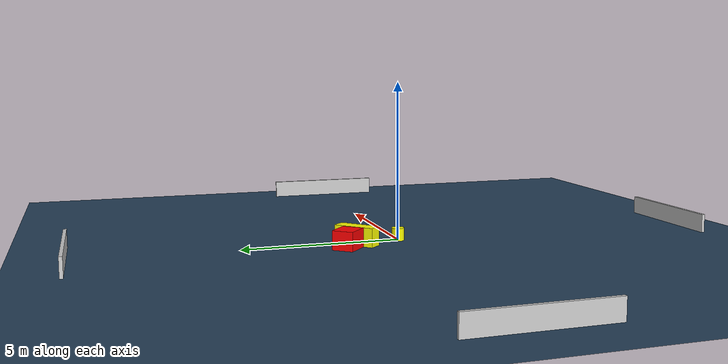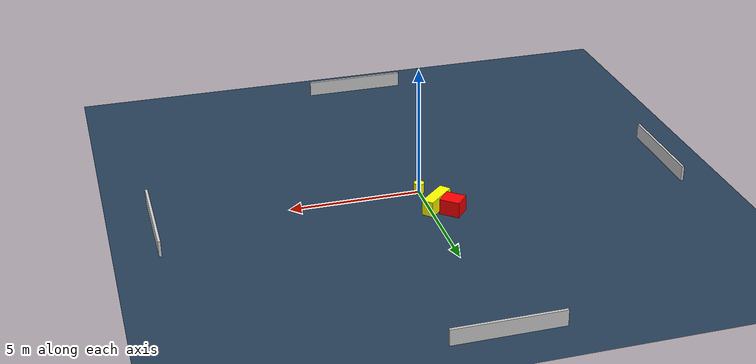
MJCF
<?xml version="1.0" ?>
<mujoco model="generated_environment">
  <option timestep="0.01" integrator="RK4" cone="elliptic"/>
  <default>
    <geom density="1"/>
  </default>
  <asset>
    <texture builtin="gradient" height="3072" name="skybox" rgb1="0.3 0.5 0.7" rgb2="0 0 0" type="skybox" width="512"/>
    <texture builtin="checker" height="300" name="groundplane" rgb1="0.2 0.3 0.4" rgb2="0.1 0.2 0.3" type="2d" width="300"/>
    <material name="groundplane" reflectance="0.2" texrepeat="5 5" texture="groundplane"/>
  </asset>
  <worldbody>
    <light dir="0 0 -1" directional="true" pos="0 0 1.5"/>
    <geom condim="3" friction="0.5 0.005 0.001" material="groundplane" name="floor" pos="0 0 0" size="0 0 0.05" type="plane"/>
    <body name="walls">
      <geom name="wall_1" condim="4" pos="-10.0 0.0 0.3" rgba="0.800000011920929 0.800000011920929 0.800000011920929 1.0" size="0.05 2.0 0.3" type="box"/>
      <geom name="wall_2" condim="4" pos="10.0 0.0 0.3" rgba="0.800000011920929 0.800000011920929 0.800000011920929 1.0" size="0.05 2.0 0.3" type="box"/>
      <geom name="wall_3" condim="4" pos="0.0 -10.0 0.3" rgba="0.800000011920929 0.800000011920929 0.800000011920929 1.0" size="2.0 0.05 0.3" type="box"/>
      <geom name="wall_4" condim="4" pos="0.0 10.0 0.3" rgba="0.800000011920929 0.800000011920929 0.800000011920929 1.0" size="2.0 0.05 0.3" type="box"/>
    </body>
    <body name="robot">
      <joint name="joint_x" type="slide" pos="0 0 0" axis="1 0 0"/>
      <joint name="joint_y" type="slide" pos="0 0 0" axis="0 1 0"/>
      <geom name="robot" type="cylinder" pos="0.0 0.0 0.2" size="0.2 0.2 0.0" mass="5.0" friction="1.0 0.005 0.0001" condim="4" rgba="1.0 1.0 0.0 1.0"/>
    </body>
    <body name="obstacle_1_movable">
      <geom name="obstacle_1_movable" condim="4" pos="-0.25240584120856346 1.4256101384002158 0.3" euler="0 0 313.27008296163217" friction="0.0 0.005 0.001" rgba="1.0 1.0 0.0 1.0" size="0.22207010247696168 0.6722896265491626 0.3" type="box" mass="0.1"/>
      <joint type="free"/>
    </body>
    <body name="obstacle_2_static">
      <geom name="obstacle_2_static" condim="4" pos="-0.7494744991730794 1.8464622929072023 0.3" euler="0 0 49.39655885552484" friction="0.0 0.005 0.001" rgba="1.0 0.0 0.0 1.0" size="0.3448753926690737 0.38882816869517983 0.3" type="box"/>
    </body>
  </worldbody>
  <actuator>
    <motor name="actuator_x" joint="joint_x" gear="1" ctrlrange="-1 1"/>
    <motor name="actuator_y" joint="joint_y" gear="1" ctrlrange="-1 1"/>
  </actuator>
</mujoco>
